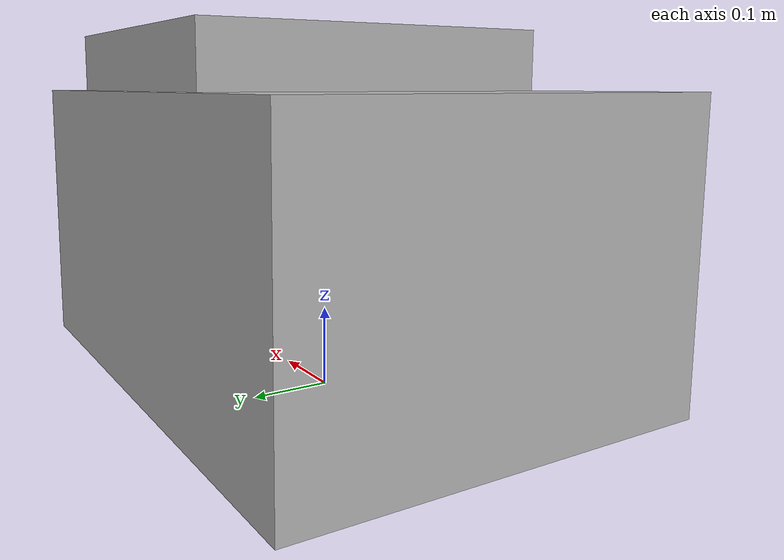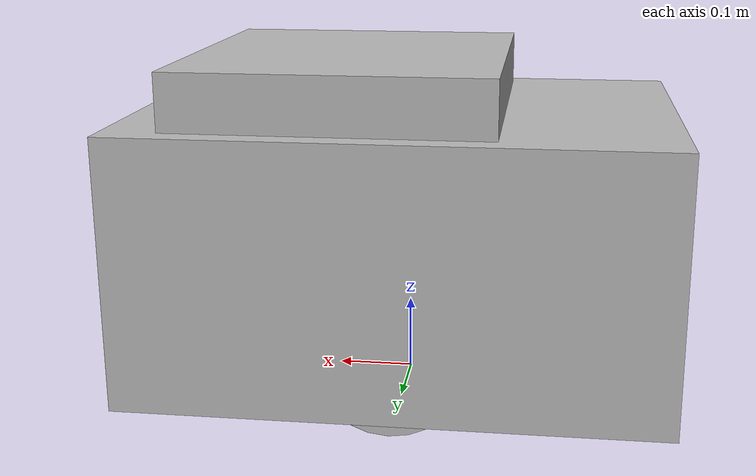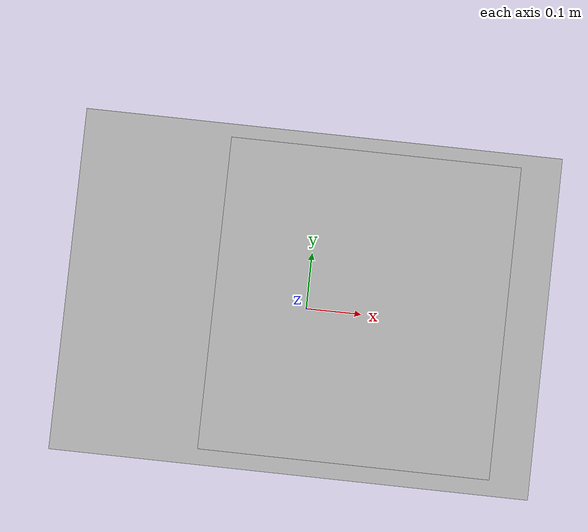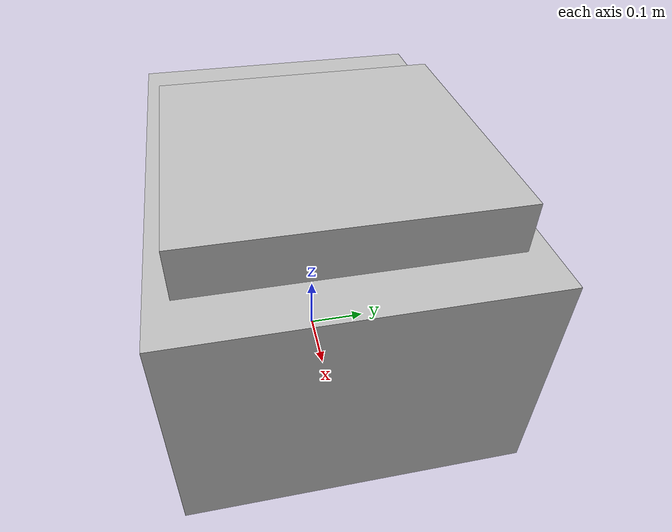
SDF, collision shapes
<sdf version='1.5'>
  <model name='pioneer-lx'>
    <link name='base_link'>
      <pose>0 0 0 0 -0 0</pose>
      <inertial>
        <pose>0 0 0 0 -0 0</pose>
        <mass>57.8</mass>
        <inertia>
          <ixx>1</ixx>
          <ixy>0</ixy>
          <ixz>0</ixz>
          <iyy>1</iyy>
          <iyz>0</iyz>
          <izz>1</izz>
        </inertia>
      </inertial>
      <collision name='base_link_collision'>
        <pose>0 0 0.2 0 -0 0</pose>
        <geometry>
          <box>
            <size>0.7 0.5 0.35</size>
          </box>
        </geometry>
      </collision>
      <collision name='base_link_collision_base_link_1'>
        <pose>0.075 0 0.41 0 -0 0</pose>
        <geometry>
          <box>
            <size>0.407 0.437 0.076</size>
          </box>
        </geometry>
      </collision>
      <visual name='base_link_visual'>
        <pose>0 0 0 0 -0 1.5708</pose>
        <geometry>
          <mesh>
            <scale>0.001 0.001 0.001</scale>
            <uri>model://p3dx_robots_description/meshes/pioneer-lx/pioneer-lx_visual.stl</uri>
          </mesh>
        </geometry>
      </visual>
      <visual name='base_link_visual_base_link_1'>
        <pose>0.075 0 0.41 0 -0 0</pose>
        <geometry>
          <box>
            <size>0.407 0.437 0.076</size>
          </box>
        </geometry>
      </visual>
    </link>
    <link name='l_wheel'>
      <pose>0 -0.2 0.1 0 -0 0</pose>
      <inertial>
        <pose>0 0 0 0 -0 0</pose>
        <mass>1.1</mass>
        <inertia>
          <ixx>0.02</ixx>
          <ixy>0</ixy>
          <ixz>0</ixz>
          <iyy>0.02</iyy>
          <iyz>0</iyz>
          <izz>0.01</izz>
        </inertia>
      </inertial>
      <collision name='l_wheel_collision'>
        <pose>0 0 0 1.5708 -0 0</pose>
        <geometry>
          <cylinder>
            <length>0.05</length>
            <radius>0.1</radius>
          </cylinder>
        </geometry>
      </collision>
    </link>
    <joint name='l_wheel_joint' type='revolute'>
      <child>l_wheel</child>
      <parent>base_link</parent>
      <axis>
        <xyz>1 0 0</xyz>
        <limit>
          <lower>-1e+16</lower>
          <upper>1e+16</upper>
        </limit>
        <dynamics>
          <spring_reference>0</spring_reference>
          <spring_stiffness>0</spring_stiffness>
        </dynamics>
        <use_parent_model_frame>1</use_parent_model_frame>
      </axis>
    </joint>
    <link name='r_wheel'>
      <pose>0 0.2 0.1 0 -0 0</pose>
      <inertial>
        <pose>0 0 0 0 -0 0</pose>
        <mass>1.1</mass>
        <inertia>
          <ixx>0.02</ixx>
          <ixy>0</ixy>
          <ixz>0</ixz>
          <iyy>0.02</iyy>
          <iyz>0</iyz>
          <izz>0.01</izz>
        </inertia>
      </inertial>
      <collision name='r_wheel_collision'>
        <pose>0 0 0 1.5708 -0 0</pose>
        <geometry>
          <cylinder>
            <length>0.05</length>
            <radius>0.1</radius>
          </cylinder>
        </geometry>
      </collision>
    </link>
    <joint name='r_wheel_joint' type='revolute'>
      <child>r_wheel</child>
      <parent>base_link</parent>
      <axis>
        <xyz>1 0 0</xyz>
        <limit>
          <lower>-1e+16</lower>
          <upper>1e+16</upper>
        </limit>
        <dynamics>
          <spring_reference>0</spring_reference>
          <spring_stiffness>0</spring_stiffness>
        </dynamics>
        <use_parent_model_frame>1</use_parent_model_frame>
      </axis>
    </joint>
    <static>0</static>
    <plugin name='differential_drive_controller' filename='libgazebo_ros_diff_drive.so'>
      <alwaysOn>true</alwaysOn>
      <updateRate>100</updateRate>
      <leftJoint>l_wheel_joint</leftJoint>
      <rightJoint>r_wheel_joint</rightJoint>
      <wheelSeparation>0.4</wheelSeparation>
      <wheelDiameter>0.2</wheelDiameter>
      <torque>5</torque>
      <commandTopic>cmd_vel</commandTopic>
      <robotBaseFrame>base_link</robotBaseFrame>
      <odometryTopic>odom</odometryTopic>
      <odometryFrame>odom</odometryFrame>
    </plugin>
  </model>
</sdf>
